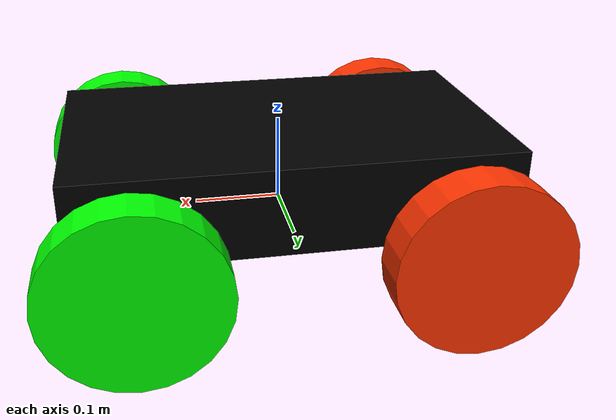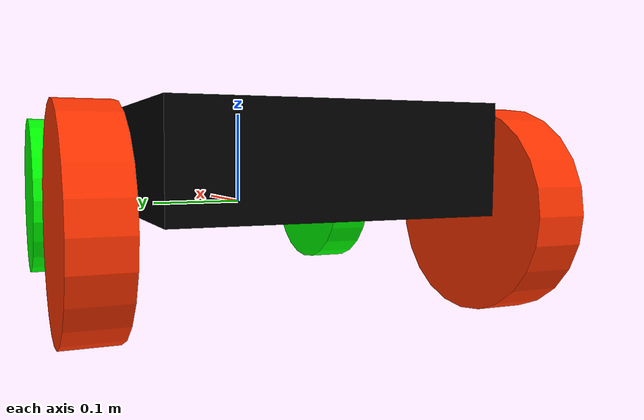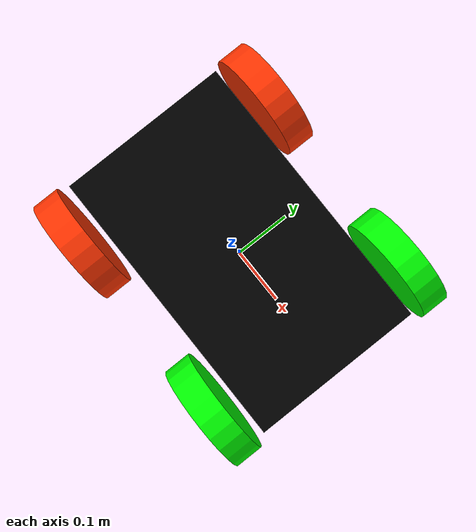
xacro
<?xml version="1.0"?>
<robot xmlns:xacro="http://www.ros.org/wiki/xacro" name="sparkbot">
    <xacro:property name="robot_name" value="sparkbot"/>
    <xacro:property name="robot_chassis_mass" value="15"/>
    <xacro:property name="robot_chassis_length" value="0.2"/>
    <xacro:property name="robot_chassis_radius" value="0.25"/>
    <xacro:property name="robot_wheel_radius" value="0.1"/>
    <xacro:property name="robot_wheel_length" value="0.05"/>
    <xacro:property name="robot_wheel_mass" value="5"/>

    <!-- Make Chassis of Bot -->
	<link name="chassis">
		<pose>0 0 0.1 0 0 0</pose>

		<inertial>
			<mass value="${robot_chassis_mass}"/>
      		<origin xyz="0.0 0 0" rpy=" 0 0 0"/>

      		<inertia
      			ixx="0.147116667" ixy="0" ixz="0"
      			iyy="0.334951167" iyz="0"
      			izz="0.3978345"
      		/>
		</inertial>

		<collision name="collision">
			<origin xyz="0 0 0.05" rpy=" 0 0 0"/>
			<geometry>
				<box size="0.6 0.3 0.1"/>
			</geometry>
		</collision>

		<visual name="chassis_visual">
			<origin xyz="0 0 0.05" rpy=" 0 0 0"/>
			<geometry>
				<box size="0.5 0.3 0.1"/>
			</geometry>
			<material name="Black">
            </material>
		</visual>

	</link>

	<!-- Right Wheel Back -->
	<link name="right_wheel_back">
		<inertial>
			<mass value="${robot_wheel_mass}"/>
			<origin xyz="0 0 0" rpy="0 1.5707 1.5707"/>
			<inertia
				ixx="0.1" ixy="0.0" ixz="0.0"
				iyy="0.1" iyz="0.0"
				izz="0.1"
			/>
		</inertial>

		<visual>
			<origin xyz="0 0 0" rpy="0 1.5707 1.5707"/>
			<geometry>
				<cylinder radius="${robot_wheel_radius}" length="${robot_wheel_length}"/>
			</geometry>
			<material name="Red"/>
		</visual>

		<collision>
			<origin xyz="0 0 0" rpy="0 1.5707 1.5707"/>
			<geometry>
				<cylinder radius="${robot_wheel_radius}" length="${robot_wheel_length}"/>
			</geometry>
		</collision>

	</link>

	<!-- Right Wheel Front-->
	<link name="right_wheel_front">
		<inertial>
			<mass value="${robot_wheel_mass}"/>
			<origin xyz="0 0 0" rpy="0 1.5707 1.5707"/>
			<inertia
				ixx="0.1" ixy="0.0" ixz="0.0"
				iyy="0.1" iyz="0.0"
				izz="0.1"
			/>
		</inertial>

		<visual>
			<origin xyz="0 0 0" rpy="0 1.5707 1.5707"/>
			<geometry>
				<cylinder radius="${robot_wheel_radius}" length="${robot_wheel_length}"/>
			</geometry>
			<material name="Green"/>
		</visual>

		<collision>
			<origin xyz="0 0 0" rpy="0 1.5707 1.5707"/>
			<geometry>
				<cylinder radius="${robot_wheel_radius}" length="${robot_wheel_length}"/>
			</geometry>
		</collision>

	</link>

	<!-- Left wheel Back-->
	<link name="left_wheel_back">
		<inertial>
			<mass value="${robot_wheel_mass}"/>
			<origin xyz="0 0 0" rpy="0 1.5707 1.5707"/>
			<inertia
				ixx="0.1" ixy="0.0" ixz="0.0"
				iyy="0.1" iyz="0.0"
				izz="0.1"
			/>
		</inertial>

		<visual>
			<origin xyz="0 0 0" rpy="0 1.5707 1.5707"/>
			<geometry>
				<cylinder radius="${robot_wheel_radius}" length="${robot_wheel_length}"/>
			</geometry>
			<material name="Red"/>
		</visual>

		<collision>
			<origin xyz="0 0 0" rpy="0 1.5707 1.5707"/>
			<geometry>
				<cylinder radius="${robot_wheel_radius}" length="${robot_wheel_length}"/>
			</geometry>
		</collision>

	</link>

	<!-- Left wheel Front-->
	<link name="left_wheel_front">
		<inertial>
			<mass value="${robot_wheel_mass}"/>
			<origin xyz="0 0 0" rpy="0 1.5707 1.5707"/>
			<inertia
				ixx="0.1" ixy="0.0" ixz="0.0"
				iyy="0.1" iyz="0.0"
				izz="0.1"
			/>
		</inertial>

		<visual>
			<origin xyz="0 0 0" rpy="0 1.5707 1.5707"/>
			<geometry>
				<cylinder radius="${robot_wheel_radius}" length="${robot_wheel_length}"/>
			</geometry>
			<material name="Green"/>
		</visual>

		<collision>
			<origin xyz="0 0 0" rpy="0 1.5707 1.5707"/>
			<geometry>
				<cylinder radius="${robot_wheel_radius}" length="${robot_wheel_length}"/>
			</geometry>
		</collision>

	</link>

    	<!-- Dummy -->
	<link name="robot_footprint"></link>

    <!--Joints-->

<!-- Right Wheel Joint Back-->
	<joint type="continuous" name="right_wheel_hinge_back">
	    <origin xyz="-0.18 -0.20 0" rpy="0 0 0" />
	    <parent link="chassis"/>
	    <child link="right_wheel_back" />
	    <axis xyz="0 1 0" rpy="0 0 0" />
	    <limit effort="10000" velocity="1000" />
	    <dynamics damping="1.0" friction="1.0" />
	</joint>

	<!-- Right Wheel Joint Front-->
	<joint type="continuous" name="right_wheel_hinge_front">
	    <origin xyz="0.18 -0.20 0" rpy="0 0 0" />
	    <parent link="chassis"/>
	    <child link="right_wheel_front" />
	    <axis xyz="0 1 0" rpy="0 0 0" />
	    <limit effort="10000" velocity="1000" />
	    <dynamics damping="1.0" friction="1.0" />
	</joint>

	<!-- Left Wheel Joint Back-->
	<joint type="continuous" name="left_wheel_hinge_back">
	    <origin xyz="-0.18 0.20 0" rpy="0 0 0" />
	    <parent link="chassis"/>
	    <child link="left_wheel_back" />
	    <axis xyz="0 1 0" rpy="0 0 0" />
	    <limit effort="10000" velocity="1000" />
	    <dynamics damping="1.0" friction="1.0" />
	</joint>

	<!-- Left Wheel Joint Front-->
	<joint type="continuous" name="left_wheel_hinge_front">
	    <origin xyz="0.18 0.20 0" rpy="0 0 0" />
	    <parent link="chassis"/>
	    <child link="left_wheel_front" />
	    <axis xyz="0 1 0" rpy="0 0 0" />
	    <limit effort="10000" velocity="1000" />
	    <dynamics damping="1.0" friction="1.0" />
	</joint>

    <!-- Robot and World Joint -->
	<joint name="robot_footprint_joint" type="fixed">
		<origin xyz="0 0 0" rpy="0 0 0" />
		<parent link="robot_footprint"/>
		<child link="chassis" />
	</joint>

    <!-- Define Material -->
	<material name="Green">
		<color rgba="0.0 1 0.0 1"/>
	</material>
	<material name="Red">
		<color rgba="1 0.2 0 1"/>
	</material>
    <material name="Black">
        <color rgba="0.0 0.0 0.0 1.0"/>
    </material>

	<gazebo reference="chassis">
		<material>Gazebo/Black</material>
	</gazebo>
	<gazebo reference="left_wheel_front">
		<material>Gazebo/Green</material>
		<kp>1000000.0</kp> <!-- kp and kd for rubber -->
		<kd>100.0</kd>
		<mu1>1.0</mu1>
		<mu2>1.0</mu2>
		<maxVel>1.0</maxVel>
		<minDepth>0.00</minDepth>
	</gazebo>

	<gazebo reference="left_wheel_back">
		<material>Gazebo/Red</material>
		<kp>1000000.0</kp> <!-- kp and kd for rubber -->
		<kd>100.0</kd>
		<mu1>1.0</mu1>
		<mu2>1.0</mu2>
		<maxVel>1.0</maxVel>
		<minDepth>0.00</minDepth>
	</gazebo>

	<gazebo reference="right_wheel_front">
		<material>Gazebo/Green</material>
		<kp>1000000.0</kp> <!-- kp and kd for rubber -->
		<kd>100.0</kd>
		<mu1>1.0</mu1>
		<mu2>1.0</mu2>
		<maxVel>1.0</maxVel>
		<minDepth>0.00</minDepth>
	</gazebo>
	<gazebo reference="right_wheel_back">
		<material>Gazebo/Red</material>
		<kp>1000000.0</kp> <!-- kp and kd for rubber -->
		<kd>100.0</kd>
		<mu1>1.0</mu1>
		<mu2>1.0</mu2>
		<maxVel>1.0</maxVel>
		<minDepth>0.00</minDepth>
	</gazebo>
    <xacro:include filename="$(find sparkbot_description)/urdf/sparkbot.gazebo" />

<plugin
    filename="gz-sim-diff-drive-system"
    name="gz::sim::systems::DiffDrive">
    <left_joint>left_wheel_joint</left_joint>
    <right_joint>right_wheel_joint</right_joint>
    <wheel_separation>1.2</wheel_separation>
    <wheel_radius>0.4</wheel_radius>
    <odom_publish_frequency>1</odom_publish_frequency>
    <topic>cmd_vel</topic>
</plugin>

</robot>
